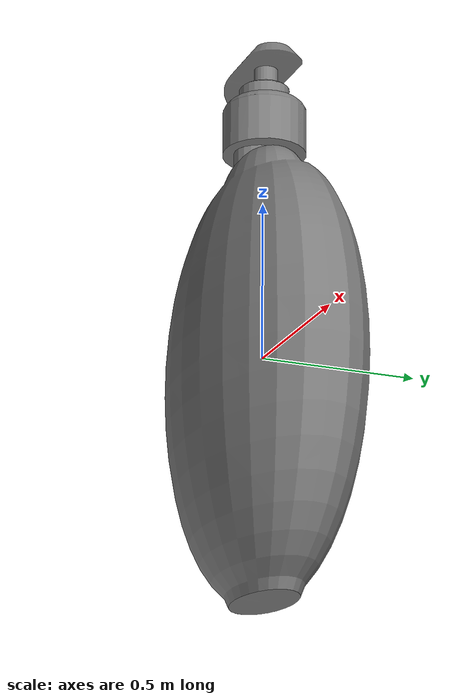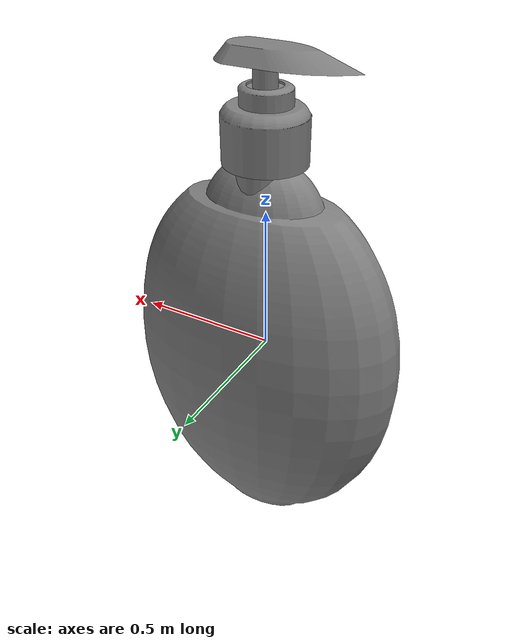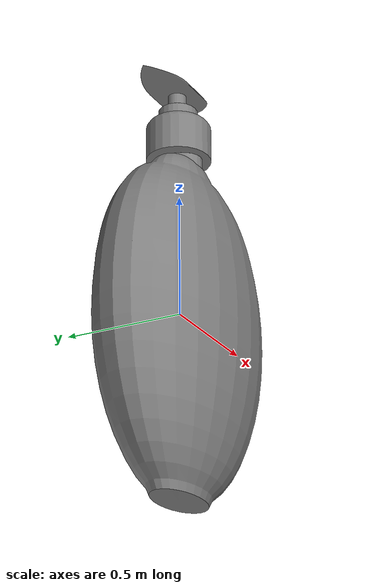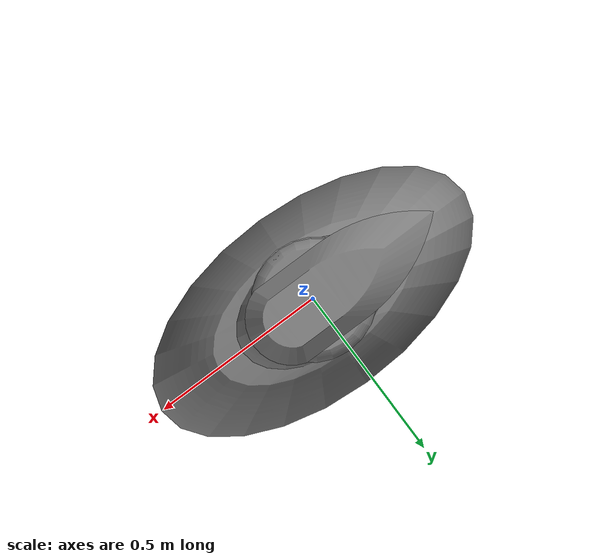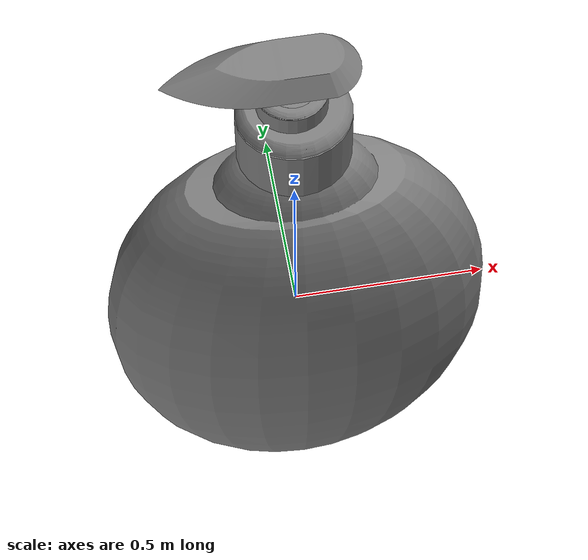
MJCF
<?xml version='1.0' encoding='UTF-8'?>
<mujoco model="partnet_eb03ba3f-2b3f-44c3-894d-2ff54920ba8b">
  <compiler angle="radian"/>
  <asset>
    <mesh name="original_4" content_type="model/obj" file="textured_objs/original_4.obj"/>
    <mesh name="original_3" content_type="model/obj" file="textured_objs/original_3.obj"/>
    <mesh name="original_1" content_type="model/obj" file="textured_objs/original_1.obj"/>
    <mesh name="original_2" content_type="model/obj" file="textured_objs/original_2.obj"/>
    <mesh name="original_5" content_type="model/obj" file="textured_objs/original_5.obj"/>
    <mesh name="original_6" content_type="model/obj" file="textured_objs/original_6.obj"/>
    <mesh name="original_8" content_type="model/obj" file="textured_objs/original_8.obj"/>
    <mesh name="original_9" content_type="model/obj" file="textured_objs/original_9.obj"/>
    <mesh name="original_11" content_type="model/obj" file="textured_objs/original_11.obj"/>
    <mesh name="original_12" content_type="model/obj" file="textured_objs/original_12.obj"/>
    <mesh name="original_10" content_type="model/obj" file="textured_objs/original_10.obj"/>
  </asset>
  <worldbody>
    <body name="base">
      <body name="link_2" quat="0.5 0.5 -0.5 -0.5">
        <geom type="mesh" mesh="original_8"/>
        <geom type="mesh" mesh="original_9"/>
        <geom type="mesh" mesh="original_11"/>
        <geom type="mesh" mesh="original_12"/>
        <geom type="mesh" mesh="original_10"/>
        <body name="link_1_helper" pos="-0.00127672 1.21843e-05 -0.00306727">
          <inertial pos="0 0 0" mass="1e-06" diaginertia="1e-10 1e-10 1e-10"/>
          <joint name="joint_4" pos="0 0 0" axis="0.00612536 0.99998 0.00142267" type="slide" range="0 0.012"/>
          <body name="link_1">
            <joint name="joint_1" pos="0 0 0" axis="0.00612536 0.99998 0.00142267"/>
            <geom pos="0.00127672 -1.21843e-05 0.00306727" quat="1 0 0 0" type="mesh" mesh="original_2"/>
            <geom pos="0.00127672 -1.21843e-05 0.00306727" quat="1 0 0 0" type="mesh" mesh="original_5"/>
            <geom pos="0.00127672 -1.21843e-05 0.00306727" quat="1 0 0 0" type="mesh" mesh="original_6"/>
            <body name="link_0_helper" pos="-0.00295498 -1.21843e-05 0.00631728">
              <inertial pos="0 0 0" mass="1e-06" diaginertia="1e-10 1e-10 1e-10"/>
              <joint name="joint_3" pos="0 0 0" axis="0 -1 0" type="slide" range="0 0.06"/>
              <body name="link_0">
                <joint name="joint_0" pos="0 0 0" axis="0 1 0"/>
                <geom pos="0.0042317 0 -0.00325001" quat="1 0 0 0" type="mesh" mesh="original_4"/>
                <geom pos="0.0042317 0 -0.00325001" quat="1 0 0 0" type="mesh" mesh="original_3"/>
                <geom pos="0.0042317 0 -0.00325001" quat="1 0 0 0" type="mesh" mesh="original_1"/>
              </body>
            </body>
          </body>
        </body>
      </body>
    </body>
  </worldbody>
</mujoco>
